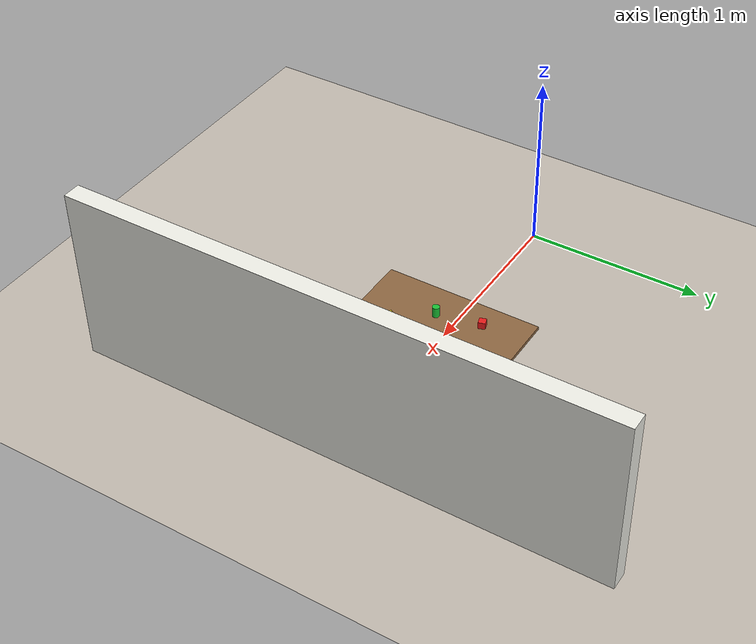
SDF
<?xml version="1.0"?>
<sdf version="1.9">
  <world name="tabletop">
    <physics name="1ms" type="ignored">
      <max_step_size>0.001</max_step_size>
      <real_time_factor>1.0</real_time_factor>
    </physics>

    <plugin filename="gz-sim-physics-system" name="gz::sim::systems::Physics"/>
    <plugin filename="gz-sim-user-commands-system" name="gz::sim::systems::UserCommands"/>
    <plugin filename="gz-sim-scene-broadcaster-system" name="gz::sim::systems::SceneBroadcaster"/>
    <plugin filename="gz-sim-sensors-system" name="gz::sim::systems::Sensors">
      <render_engine>ogre2</render_engine>
    </plugin>
    <plugin filename="gz-sim-imu-system" name="gz::sim::systems::Imu"/>

    <gravity>0 0 -9.8</gravity>
    <scene>
      <ambient>0.6 0.6 0.6 1</ambient>
      <background>0.8 0.85 0.9 1</background>
      <grid>false</grid>
    </scene>

    <light type="directional" name="sun">
      <cast_shadows>true</cast_shadows>
      <pose>0 0 10 0 0 0</pose>
      <diffuse>0.9 0.9 0.9 1</diffuse>
      <specular>0.2 0.2 0.2 1</specular>
      <direction>-0.3 0.2 -0.9</direction>
    </light>

    <model name="ground_plane">
      <static>true</static>
      <link name="link">
        <collision name="collision">
          <geometry><plane><normal>0 0 1</normal><size>20 20</size></plane></geometry>
        </collision>
        <visual name="visual">
          <geometry><plane><normal>0 0 1</normal><size>20 20</size></plane></geometry>
          <material><ambient>0.75 0.72 0.68 1</ambient><diffuse>0.75 0.72 0.68 1</diffuse></material>
        </visual>
      </link>
    </model>

    <!-- A back wall gives the camera a plain background and the LiDAR something to see. -->
    <model name="back_wall">
      <static>true</static>
      <pose>2.0 0 0.5 0 0 0</pose>
      <link name="link">
        <collision name="collision"><geometry><box><size>0.1 3 1</size></box></geometry></collision>
        <visual name="visual">
          <geometry><box><size>0.1 3 1</size></box></geometry>
          <material><ambient>0.93 0.93 0.9 1</ambient><diffuse>0.93 0.93 0.9 1</diffuse></material>
        </visual>
      </link>
    </model>

    <model name="table">
      <static>true</static>
      <pose>1.1 0 0 0 0 0</pose>
      <link name="link">
        <collision name="top_collision">
          <pose>0 0 0.11 0 0 0</pose>
          <geometry><box><size>0.6 0.9 0.02</size></box></geometry>
        </collision>
        <visual name="top_visual">
          <pose>0 0 0.11 0 0 0</pose>
          <geometry><box><size>0.6 0.9 0.02</size></box></geometry>
          <material><ambient>0.55 0.4 0.25 1</ambient><diffuse>0.55 0.4 0.25 1</diffuse></material>
        </visual>
        <collision name="base_collision">
          <pose>0 0 0.05 0 0 0</pose>
          <geometry><box><size>0.5 0.8 0.10</size></box></geometry>
        </collision>
        <visual name="base_visual">
          <pose>0 0 0.05 0 0 0</pose>
          <geometry><box><size>0.5 0.8 0.10</size></box></geometry>
          <material><ambient>0.3 0.2 0.12 1</ambient><diffuse>0.3 0.2 0.12 1</diffuse></material>
        </visual>
      </link>
    </model>

    <!-- Objects rest on the table top (z = 0.12). Inertias: solid box / cylinder / sphere formulas. -->
    <model name="red_cube">
      <pose>0.95 0.2 0.14 0 0 0.3</pose>
      <link name="link">
        <inertial>
          <mass>0.05</mass>
          <inertia><ixx>1.33e-5</ixx><iyy>1.33e-5</iyy><izz>1.33e-5</izz><ixy>0</ixy><ixz>0</ixz><iyz>0</iyz></inertia>
        </inertial>
        <collision name="collision"><geometry><box><size>0.04 0.04 0.04</size></box></geometry></collision>
        <visual name="visual">
          <geometry><box><size>0.04 0.04 0.04</size></box></geometry>
          <material><ambient>0.9 0.1 0.1 1</ambient><diffuse>0.9 0.1 0.1 1</diffuse></material>
        </visual>
      </link>
    </model>

    <model name="green_cylinder">
      <pose>1.0 -0.05 0.15 0 0 0</pose>
      <link name="link">
        <inertial>
          <mass>0.05</mass>
          <inertia><ixx>2.0e-5</ixx><iyy>2.0e-5</iyy><izz>1.0e-5</izz><ixy>0</ixy><ixz>0</ixz><iyz>0</iyz></inertia>
        </inertial>
        <collision name="collision"><geometry><cylinder><radius>0.02</radius><length>0.06</length></cylinder></geometry></collision>
        <visual name="visual">
          <geometry><cylinder><radius>0.02</radius><length>0.06</length></cylinder></geometry>
          <material><ambient>0.1 0.75 0.2 1</ambient><diffuse>0.1 0.75 0.2 1</diffuse></material>
        </visual>
      </link>
    </model>

    <model name="blue_sphere">
      <pose>1.2 0.1 0.145 0 0 0</pose>
      <link name="link">
        <inertial>
          <mass>0.03</mass>
          <inertia><ixx>7.5e-6</ixx><iyy>7.5e-6</iyy><izz>7.5e-6</izz><ixy>0</ixy><ixz>0</ixz><iyz>0</iyz></inertia>
        </inertial>
        <collision name="collision"><geometry><sphere><radius>0.025</radius></sphere></geometry></collision>
        <visual name="visual">
          <geometry><sphere><radius>0.025</radius></sphere></geometry>
          <material><ambient>0.1 0.25 0.9 1</ambient><diffuse>0.1 0.25 0.9 1</diffuse></material>
        </visual>
      </link>
    </model>

    <model name="yellow_box">
      <pose>1.15 -0.25 0.135 0 0 -0.4</pose>
      <link name="link">
        <inertial>
          <mass>0.04</mass>
          <inertia><ixx>8.3e-6</ixx><iyy>1.5e-5</iyy><izz>1.7e-5</izz><ixy>0</ixy><ixz>0</ixz><iyz>0</iyz></inertia>
        </inertial>
        <collision name="collision"><geometry><box><size>0.06 0.04 0.03</size></box></geometry></collision>
        <visual name="visual">
          <geometry><box><size>0.06 0.04 0.03</size></box></geometry>
          <material><ambient>0.95 0.85 0.1 1</ambient><diffuse>0.95 0.85 0.1 1</diffuse></material>
        </visual>
      </link>
    </model>
  </world>
</sdf>
